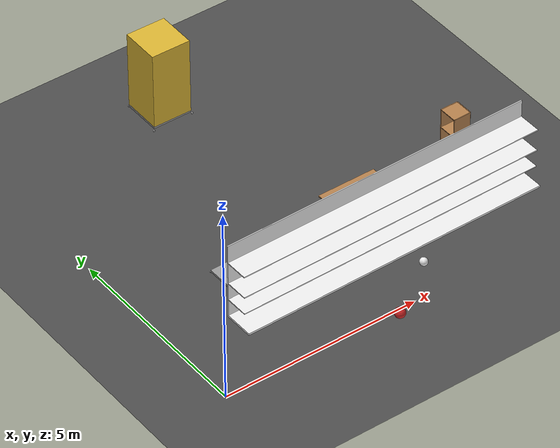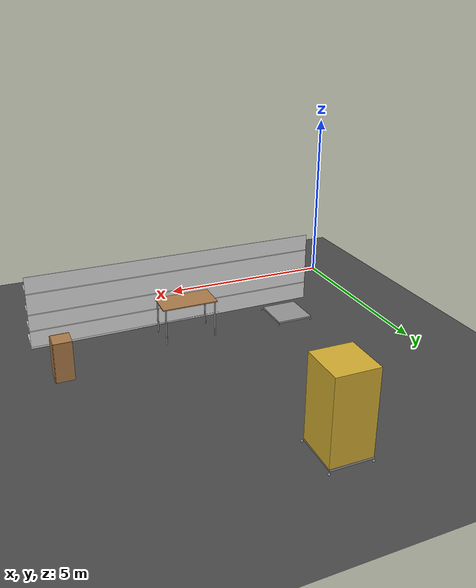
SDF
<sdf version="1.6">
 <world name="default">
  <model name="ground_plane">
   <static>1</static>
   <link name="link">
    <collision name="collision">
     <geometry><plane><normal>0 0 1</normal><size>100 100</size></plane></geometry>
     <surface>
      <contact><collide_bitmask>65535</collide_bitmask></contact>
      <friction><ode><mu>100</mu><mu2>50</mu2></ode></friction>
     </surface>
    </collision>
    <visual name="visual">
     <cast_shadows>0</cast_shadows>
     <geometry><plane><normal>0 0 1</normal><size>100 100</size></plane></geometry>
     <material>
      <script>
       <uri>model://asphalt_plane/materials/scripts</uri>
       <uri>model://asphalt_plane/materials/textures</uri>
       <name>vrc/asphalt</name>
      </script>
     </material>
    </visual>
   </link>
  </model>
  <model name="dolly">
   <link name="link_0">
    <inertial>
     <mass>0.580233</mass>
     <inertia>
      <ixx>0.0485156</ixx>
      <ixy>0</ixy>
      <ixz>0</ixz>
      <iyy>0.0485156</iyy>
      <iyz>0</iyz>
      <izz>0.0967055</izz>
     </inertia>
    </inertial>
    <pose>-0 0 0.05 0 -0 0</pose>
    <visual name="visual">
     <geometry><box><size>1 1 0.05</size></box></geometry>
     <material>
      <lighting>1</lighting>
      <script><uri>file://media/materials/scripts/gazebo.material</uri><name>Gazebo/Grey</name></script>
      <shader type="vertex"><normal_map>__default__</normal_map></shader>
      <ambient>0.3 0.3 0.3 1</ambient>
      <diffuse>0.9 0.9 0.9 1</diffuse>
      <specular>0.08 0.08 0.08 1</specular>
      <emissive>0 0 0 1</emissive>
     </material>
    </visual>
    <collision name="collision">
     <geometry><box><size>1 1 0.05</size></box></geometry>
     <surface>
      <friction>
       <ode><mu>1</mu><mu2>1</mu2><fdir1>0 0 0</fdir1><slip1>0</slip1><slip2>0</slip2></ode>
       <torsional>
        <coefficient>1</coefficient>
        <patch_radius>0</patch_radius>
        <surface_radius>0</surface_radius>
        <use_patch_radius>1</use_patch_radius>
        <ode><slip>0</slip></ode>
       </torsional>
      </friction>
      <bounce><restitution_coefficient>0</restitution_coefficient><threshold>1e+06</threshold></bounce>
      <contact>
       <collide_without_contact>0</collide_without_contact>
       <collide_without_contact_bitmask>1</collide_without_contact_bitmask>
       <collide_bitmask>1</collide_bitmask>
       <ode>
        <soft_cfm>0</soft_cfm>
        <soft_erp>0.2</soft_erp>
        <kp>1e+13</kp>
        <kd>1</kd>
        <max_vel>0.01</max_vel>
        <min_depth>0</min_depth>
       </ode>
       <bullet>
        <split_impulse>1</split_impulse>
        <split_impulse_penetration_threshold>-0.01</split_impulse_penetration_threshold>
        <soft_cfm>0</soft_cfm>
        <soft_erp>0.2</soft_erp>
        <kp>1e+13</kp>
        <kd>1</kd>
       </bullet>
      </contact>
     </surface>
    </collision>
   </link>
   <link name="link_0_0">
    <inertial>
     <mass>1</mass>
     <inertia><ixx>0.1</ixx><ixy>0</ixy><ixz>0</ixz><iyy>0.1</iyy><iyz>0</iyz><izz>0.1</izz></inertia>
    </inertial>
    <pose>-0.475902 0.525156 0 0 -0 0</pose>
    <visual name="visual">
     <geometry><sphere><radius>0.025</radius></sphere></geometry>
     <material>
      <lighting>1</lighting>
      <script><uri>file://media/materials/scripts/gazebo.material</uri><name>Gazebo/Grey</name></script>
      <shader type="vertex"><normal_map>__default__</normal_map></shader>
      <ambient>0.3 0.3 0.3 1</ambient>
      <diffuse>0.7 0.7 0.7 1</diffuse>
      <specular>0.01 0.01 0.01 1</specular>
      <emissive>0 0 0 1</emissive>
     </material>
    </visual>
    <collision name="collision">
     <geometry><sphere><radius>0.025</radius></sphere></geometry>
     <surface>
      <friction>
       <ode><mu>1</mu><mu2>1</mu2><fdir1>0 0 0</fdir1><slip1>0</slip1><slip2>0</slip2></ode>
       <torsional>
        <coefficient>1</coefficient>
        <patch_radius>0</patch_radius>
        <surface_radius>0</surface_radius>
        <use_patch_radius>1</use_patch_radius>
        <ode><slip>0</slip></ode>
       </torsional>
      </friction>
      <bounce><restitution_coefficient>0</restitution_coefficient><threshold>1e+06</threshold></bounce>
      <contact>
       <collide_without_contact>0</collide_without_contact>
       <collide_without_contact_bitmask>1</collide_without_contact_bitmask>
       <collide_bitmask>1</collide_bitmask>
       <ode>
        <soft_cfm>0</soft_cfm>
        <soft_erp>0.2</soft_erp>
        <kp>1e+13</kp>
        <kd>1</kd>
        <max_vel>0.01</max_vel>
        <min_depth>0</min_depth>
       </ode>
       <bullet>
        <split_impulse>1</split_impulse>
        <split_impulse_penetration_threshold>-0.01</split_impulse_penetration_threshold>
        <soft_cfm>0</soft_cfm>
        <soft_erp>0.2</soft_erp>
        <kp>1e+13</kp>
        <kd>1</kd>
       </bullet>
      </contact>
     </surface>
    </collision>
   </link>
   <link name="link_0_0_clone">
    <inertial>
     <mass>1</mass>
     <inertia><ixx>0.1</ixx><ixy>0</ixy><ixz>0</ixz><iyy>0.1</iyy><iyz>0</iyz><izz>0.1</izz></inertia>
    </inertial>
    <pose>0.524976 0.525931 -1.1e-05 3.7e-05 1.2e-05 0.000901</pose>
    <visual name="visual_0">
     <geometry><sphere><radius>0.025</radius></sphere></geometry>
     <material>
      <lighting>1</lighting>
      <script><uri>file://media/materials/scripts/gazebo.material</uri><name>Gazebo/Grey</name></script>
      <shader type="vertex"><normal_map>__default__</normal_map></shader>
      <ambient>0.3 0.3 0.3 1</ambient>
      <diffuse>0.7 0.7 0.7 1</diffuse>
      <specular>0.01 0.01 0.01 1</specular>
      <emissive>0 0 0 1</emissive>
     </material>
    </visual>
    <collision name="collision">
     <geometry><sphere><radius>0.025</radius></sphere></geometry>
     <surface>
      <friction>
       <ode><mu>1</mu><mu2>1</mu2><fdir1>0 0 0</fdir1><slip1>0</slip1><slip2>0</slip2></ode>
       <torsional>
        <coefficient>1</coefficient>
        <patch_radius>0</patch_radius>
        <surface_radius>0</surface_radius>
        <use_patch_radius>1</use_patch_radius>
        <ode><slip>0</slip></ode>
       </torsional>
      </friction>
      <bounce><restitution_coefficient>0</restitution_coefficient><threshold>1e+06</threshold></bounce>
      <contact>
       <collide_without_contact>0</collide_without_contact>
       <collide_without_contact_bitmask>1</collide_without_contact_bitmask>
       <collide_bitmask>1</collide_bitmask>
       <ode>
        <soft_cfm>0</soft_cfm>
        <soft_erp>0.2</soft_erp>
        <kp>1e+13</kp>
        <kd>1</kd>
        <max_vel>0.01</max_vel>
        <min_depth>0</min_depth>
       </ode>
       <bullet>
        <split_impulse>1</split_impulse>
        <split_impulse_penetration_threshold>-0.01</split_impulse_penetration_threshold>
        <soft_cfm>0</soft_cfm>
        <soft_erp>0.2</soft_erp>
        <kp>1e+13</kp>
        <kd>1</kd>
       </bullet>
      </contact>
     </surface>
    </collision>
   </link>
   <link name="link_0_0_clone_clone">
    <inertial>
     <mass>1</mass>
     <inertia><ixx>0.1</ixx><ixy>0</ixy><ixz>0</ixz><iyy>0.1</iyy><iyz>0</iyz><izz>0.1</izz></inertia>
    </inertial>
    <pose>0.525946 -0.524999 -5.1e-05 7.4e-05 2.4e-05 0.001802</pose>
    <visual name="visual_0">
     <geometry><sphere><radius>0.025</radius></sphere></geometry>
     <material>
      <lighting>1</lighting>
      <script><uri>file://media/materials/scripts/gazebo.material</uri><name>Gazebo/Grey</name></script>
      <shader type="vertex"><normal_map>__default__</normal_map></shader>
      <ambient>0.3 0.3 0.3 1</ambient>
      <diffuse>0.7 0.7 0.7 1</diffuse>
      <specular>0.01 0.01 0.01 1</specular>
      <emissive>0 0 0 1</emissive>
     </material>
    </visual>
    <collision name="collision">
     <geometry><sphere><radius>0.025</radius></sphere></geometry>
     <surface>
      <friction>
       <ode><mu>1</mu><mu2>1</mu2><fdir1>0 0 0</fdir1><slip1>0</slip1><slip2>0</slip2></ode>
       <torsional>
        <coefficient>1</coefficient>
        <patch_radius>0</patch_radius>
        <surface_radius>0</surface_radius>
        <use_patch_radius>1</use_patch_radius>
        <ode><slip>0</slip></ode>
       </torsional>
      </friction>
      <bounce><restitution_coefficient>0</restitution_coefficient><threshold>1e+06</threshold></bounce>
      <contact>
       <collide_without_contact>0</collide_without_contact>
       <collide_without_contact_bitmask>1</collide_without_contact_bitmask>
       <collide_bitmask>1</collide_bitmask>
       <ode>
        <soft_cfm>0</soft_cfm>
        <soft_erp>0.2</soft_erp>
        <kp>1e+13</kp>
        <kd>1</kd>
        <max_vel>0.01</max_vel>
        <min_depth>0</min_depth>
       </ode>
       <bullet>
        <split_impulse>1</split_impulse>
        <split_impulse_penetration_threshold>-0.01</split_impulse_penetration_threshold>
        <soft_cfm>0</soft_cfm>
        <soft_erp>0.2</soft_erp>
        <kp>1e+13</kp>
        <kd>1</kd>
       </bullet>
      </contact>
     </surface>
    </collision>
   </link>
   <link name="link_0_0_clone_clone_clone">
    <inertial>
     <mass>1</mass>
     <inertia><ixx>0.1</ixx><ixy>0</ixy><ixz>0</ixz><iyy>0.1</iyy><iyz>0</iyz><izz>0.1</izz></inertia>
    </inertial>
    <pose>-0.525024 -0.52597 -4e-05 0.000111 3.5e-05 0.002703</pose>
    <visual name="visual_0">
     <geometry><sphere><radius>0.025</radius></sphere></geometry>
     <material>
      <lighting>1</lighting>
      <script><uri>file://media/materials/scripts/gazebo.material</uri><name>Gazebo/Grey</name></script>
      <shader type="vertex"><normal_map>__default__</normal_map></shader>
      <ambient>0.3 0.3 0.3 1</ambient>
      <diffuse>0.7 0.7 0.7 1</diffuse>
      <specular>0.01 0.01 0.01 1</specular>
      <emissive>0 0 0 1</emissive>
     </material>
    </visual>
    <collision name="collision">
     <geometry><sphere><radius>0.025</radius></sphere></geometry>
     <surface>
      <friction>
       <ode><mu>1</mu><mu2>1</mu2><fdir1>0 0 0</fdir1><slip1>0</slip1><slip2>0</slip2></ode>
       <torsional>
        <coefficient>1</coefficient>
        <patch_radius>0</patch_radius>
        <surface_radius>0</surface_radius>
        <use_patch_radius>1</use_patch_radius>
        <ode><slip>0</slip></ode>
       </torsional>
      </friction>
      <bounce><restitution_coefficient>0</restitution_coefficient><threshold>1e+06</threshold></bounce>
      <contact>
       <collide_without_contact>0</collide_without_contact>
       <collide_without_contact_bitmask>1</collide_without_contact_bitmask>
       <collide_bitmask>1</collide_bitmask>
       <ode>
        <soft_cfm>0</soft_cfm>
        <soft_erp>0.2</soft_erp>
        <kp>1e+13</kp>
        <kd>1</kd>
        <max_vel>0.01</max_vel>
        <min_depth>0</min_depth>
       </ode>
       <bullet>
        <split_impulse>1</split_impulse>
        <split_impulse_penetration_threshold>-0.01</split_impulse_penetration_threshold>
        <soft_cfm>0</soft_cfm>
        <soft_erp>0.2</soft_erp>
        <kp>1e+13</kp>
        <kd>1</kd>
       </bullet>
      </contact>
     </surface>
    </collision>
   </link>
   <joint name="link_0_JOINT_1" type="ball">
    <parent>link_0</parent>
    <child>link_0_0</child>
    <physics>
     <ode><limit><cfm>0</cfm><erp>0.2</erp></limit><suspension><cfm>0</cfm><erp>0.2</erp></suspension></ode>
    </physics>
   </joint>
   <joint name="link_0_JOINT_2" type="revolute">
    <parent>link_0</parent>
    <child>link_0_0_clone</child>
    <axis>
     <xyz>1 0 0</xyz>
     <use_parent_model_frame>0</use_parent_model_frame>
     <limit>
      <lower>-1.79769e+308</lower>
      <upper>1.79769e+308</upper>
      <effort>-1</effort>
      <velocity>-1</velocity>
     </limit>
     <dynamics>
      <spring_reference>0</spring_reference>
      <spring_stiffness>0</spring_stiffness>
      <damping>0</damping>
     </dynamics>
    </axis>
    <physics>
     <ode><limit><cfm>0</cfm><erp>0.2</erp></limit><suspension><cfm>0</cfm><erp>0.2</erp></suspension></ode>
    </physics>
   </joint>
   <joint name="link_0_JOINT_3" type="revolute">
    <parent>link_0</parent>
    <child>link_0_0_clone_clone</child>
    <axis>
     <xyz>1 0 0</xyz>
     <use_parent_model_frame>0</use_parent_model_frame>
     <limit>
      <lower>-1.79769e+308</lower>
      <upper>1.79769e+308</upper>
      <effort>-1</effort>
      <velocity>-1</velocity>
     </limit>
     <dynamics>
      <spring_reference>0</spring_reference>
      <spring_stiffness>0</spring_stiffness>
      <damping>0</damping>
     </dynamics>
    </axis>
    <physics>
     <ode><limit><cfm>0</cfm><erp>0.2</erp></limit><suspension><cfm>0</cfm><erp>0.2</erp></suspension></ode>
    </physics>
   </joint>
   <joint name="link_0_JOINT_4" type="revolute">
    <parent>link_0</parent>
    <child>link_0_0_clone_clone_clone</child>
    <axis>
     <xyz>1 0 0</xyz>
     <use_parent_model_frame>0</use_parent_model_frame>
     <limit>
      <lower>-1.79769e+308</lower>
      <upper>1.79769e+308</upper>
      <effort>-1</effort>
      <velocity>-1</velocity>
     </limit>
     <dynamics>
      <spring_reference>0</spring_reference>
      <spring_stiffness>0</spring_stiffness>
      <damping>0</damping>
     </dynamics>
    </axis>
    <physics>
     <ode><limit><cfm>0</cfm><erp>0.2</erp></limit><suspension><cfm>0</cfm><erp>0.2</erp></suspension></ode>
    </physics>
   </joint>
   <static>0</static>
   <pose>2.48886 2.79179 0.075025 -3.8e-05 -1.1e-05 0.005109</pose>
  </model>
  <model name="dolly_0">
   <link name="link_0">
    <inertial>
     <mass>0.580233</mass>
     <inertia>
      <ixx>0.0485156</ixx>
      <ixy>0</ixy>
      <ixz>0</ixz>
      <iyy>0.0485156</iyy>
      <iyz>0</iyz>
      <izz>0.0967055</izz>
     </inertia>
    </inertial>
    <pose>-0 0 0.05 0 -0 0</pose>
    <visual name="visual">
     <geometry><box><size>1 1 0.05</size></box></geometry>
     <material>
      <lighting>1</lighting>
      <script><uri>file://media/materials/scripts/gazebo.material</uri><name>Gazebo/Grey</name></script>
      <shader type="vertex"><normal_map>__default__</normal_map></shader>
      <ambient>0.3 0.3 0.3 1</ambient>
      <diffuse>0.9 0.9 0.9 1</diffuse>
      <specular>0.08 0.08 0.08 1</specular>
      <emissive>0 0 0 1</emissive>
     </material>
    </visual>
    <collision name="collision">
     <geometry><box><size>1 1 0.05</size></box></geometry>
     <surface>
      <friction>
       <ode><mu>1</mu><mu2>1</mu2><fdir1>0 0 0</fdir1><slip1>0</slip1><slip2>0</slip2></ode>
       <torsional>
        <coefficient>1</coefficient>
        <patch_radius>0</patch_radius>
        <surface_radius>0</surface_radius>
        <use_patch_radius>1</use_patch_radius>
        <ode><slip>0</slip></ode>
       </torsional>
      </friction>
      <bounce><restitution_coefficient>0</restitution_coefficient><threshold>1e+06</threshold></bounce>
      <contact>
       <collide_without_contact>0</collide_without_contact>
       <collide_without_contact_bitmask>1</collide_without_contact_bitmask>
       <collide_bitmask>1</collide_bitmask>
       <ode>
        <soft_cfm>0</soft_cfm>
        <soft_erp>0.2</soft_erp>
        <kp>1e+13</kp>
        <kd>1</kd>
        <max_vel>0.01</max_vel>
        <min_depth>0</min_depth>
       </ode>
       <bullet>
        <split_impulse>1</split_impulse>
        <split_impulse_penetration_threshold>-0.01</split_impulse_penetration_threshold>
        <soft_cfm>0</soft_cfm>
        <soft_erp>0.2</soft_erp>
        <kp>1e+13</kp>
        <kd>1</kd>
       </bullet>
      </contact>
     </surface>
    </collision>
   </link>
   <link name="link_0_0">
    <inertial>
     <mass>1</mass>
     <inertia><ixx>0.1</ixx><ixy>0</ixy><ixz>0</ixz><iyy>0.1</iyy><iyz>0</iyz><izz>0.1</izz></inertia>
    </inertial>
    <pose>-0.475902 0.525156 0 0 -0 0</pose>
    <visual name="visual">
     <geometry><sphere><radius>0.025</radius></sphere></geometry>
     <material>
      <lighting>1</lighting>
      <script><uri>file://media/materials/scripts/gazebo.material</uri><name>Gazebo/Grey</name></script>
      <shader type="vertex"><normal_map>__default__</normal_map></shader>
      <ambient>0.3 0.3 0.3 1</ambient>
      <diffuse>0.7 0.7 0.7 1</diffuse>
      <specular>0.01 0.01 0.01 1</specular>
      <emissive>0 0 0 1</emissive>
     </material>
    </visual>
    <collision name="collision">
     <geometry><sphere><radius>0.025</radius></sphere></geometry>
     <surface>
      <friction>
       <ode><mu>1</mu><mu2>1</mu2><fdir1>0 0 0</fdir1><slip1>0</slip1><slip2>0</slip2></ode>
       <torsional>
        <coefficient>1</coefficient>
        <patch_radius>0</patch_radius>
        <surface_radius>0</surface_radius>
        <use_patch_radius>1</use_patch_radius>
        <ode><slip>0</slip></ode>
       </torsional>
      </friction>
      <bounce><restitution_coefficient>0</restitution_coefficient><threshold>1e+06</threshold></bounce>
      <contact>
       <collide_without_contact>0</collide_without_contact>
       <collide_without_contact_bitmask>1</collide_without_contact_bitmask>
       <collide_bitmask>1</collide_bitmask>
       <ode>
        <soft_cfm>0</soft_cfm>
        <soft_erp>0.2</soft_erp>
        <kp>1e+13</kp>
        <kd>1</kd>
        <max_vel>0.01</max_vel>
        <min_depth>0</min_depth>
       </ode>
       <bullet>
        <split_impulse>1</split_impulse>
        <split_impulse_penetration_threshold>-0.01</split_impulse_penetration_threshold>
        <soft_cfm>0</soft_cfm>
        <soft_erp>0.2</soft_erp>
        <kp>1e+13</kp>
        <kd>1</kd>
       </bullet>
      </contact>
     </surface>
    </collision>
   </link>
   <link name="link_0_0_clone">
    <inertial>
     <mass>1</mass>
     <inertia><ixx>0.1</ixx><ixy>0</ixy><ixz>0</ixz><iyy>0.1</iyy><iyz>0</iyz><izz>0.1</izz></inertia>
    </inertial>
    <pose>0.524976 0.525931 -1.1e-05 3.7e-05 1.2e-05 0.000901</pose>
    <visual name="visual_0">
     <geometry><sphere><radius>0.025</radius></sphere></geometry>
     <material>
      <lighting>1</lighting>
      <script><uri>file://media/materials/scripts/gazebo.material</uri><name>Gazebo/Grey</name></script>
      <shader type="vertex"><normal_map>__default__</normal_map></shader>
      <ambient>0.3 0.3 0.3 1</ambient>
      <diffuse>0.7 0.7 0.7 1</diffuse>
      <specular>0.01 0.01 0.01 1</specular>
      <emissive>0 0 0 1</emissive>
     </material>
    </visual>
    <collision name="collision">
     <geometry><sphere><radius>0.025</radius></sphere></geometry>
     <surface>
      <friction>
       <ode><mu>1</mu><mu2>1</mu2><fdir1>0 0 0</fdir1><slip1>0</slip1><slip2>0</slip2></ode>
       <torsional>
        <coefficient>1</coefficient>
        <patch_radius>0</patch_radius>
        <surface_radius>0</surface_radius>
        <use_patch_radius>1</use_patch_radius>
        <ode><slip>0</slip></ode>
       </torsional>
      </friction>
      <bounce><restitution_coefficient>0</restitution_coefficient><threshold>1e+06</threshold></bounce>
      <contact>
       <collide_without_contact>0</collide_without_contact>
       <collide_without_contact_bitmask>1</collide_without_contact_bitmask>
       <collide_bitmask>1</collide_bitmask>
       <ode>
        <soft_cfm>0</soft_cfm>
        <soft_erp>0.2</soft_erp>
        <kp>1e+13</kp>
        <kd>1</kd>
        <max_vel>0.01</max_vel>
        <min_depth>0</min_depth>
       </ode>
       <bullet>
        <split_impulse>1</split_impulse>
        <split_impulse_penetration_threshold>-0.01</split_impulse_penetration_threshold>
        <soft_cfm>0</soft_cfm>
        <soft_erp>0.2</soft_erp>
        <kp>1e+13</kp>
        <kd>1</kd>
       </bullet>
      </contact>
     </surface>
    </collision>
   </link>
   <link name="link_0_0_clone_clone">
    <inertial>
     <mass>1</mass>
     <inertia><ixx>0.1</ixx><ixy>0</ixy><ixz>0</ixz><iyy>0.1</iyy><iyz>0</iyz><izz>0.1</izz></inertia>
    </inertial>
    <pose>0.525946 -0.524999 -5.1e-05 7.4e-05 2.4e-05 0.001802</pose>
    <visual name="visual_0">
     <geometry><sphere><radius>0.025</radius></sphere></geometry>
     <material>
      <lighting>1</lighting>
      <script><uri>file://media/materials/scripts/gazebo.material</uri><name>Gazebo/Grey</name></script>
      <shader type="vertex"><normal_map>__default__</normal_map></shader>
      <ambient>0.3 0.3 0.3 1</ambient>
      <diffuse>0.7 0.7 0.7 1</diffuse>
      <specular>0.01 0.01 0.01 1</specular>
      <emissive>0 0 0 1</emissive>
     </material>
    </visual>
    <collision name="collision">
     <geometry><sphere><radius>0.025</radius></sphere></geometry>
     <surface>
      <friction>
       <ode><mu>1</mu><mu2>1</mu2><fdir1>0 0 0</fdir1><slip1>0</slip1><slip2>0</slip2></ode>
       <torsional>
        <coefficient>1</coefficient>
        <patch_radius>0</patch_radius>
        <surface_radius>0</surface_radius>
        <use_patch_radius>1</use_patch_radius>
        <ode><slip>0</slip></ode>
       </torsional>
      </friction>
      <bounce><restitution_coefficient>0</restitution_coefficient><threshold>1e+06</threshold></bounce>
      <contact>
       <collide_without_contact>0</collide_without_contact>
       <collide_without_contact_bitmask>1</collide_without_contact_bitmask>
       <collide_bitmask>1</collide_bitmask>
       <ode>
        <soft_cfm>0</soft_cfm>
        <soft_erp>0.2</soft_erp>
        <kp>1e+13</kp>
        <kd>1</kd>
        <max_vel>0.01</max_vel>
        <min_depth>0</min_depth>
       </ode>
       <bullet>
        <split_impulse>1</split_impulse>
        <split_impulse_penetration_threshold>-0.01</split_impulse_penetration_threshold>
        <soft_cfm>0</soft_cfm>
        <soft_erp>0.2</soft_erp>
        <kp>1e+13</kp>
        <kd>1</kd>
       </bullet>
      </contact>
     </surface>
    </collision>
   </link>
   <link name="link_0_0_clone_clone_clone">
    <inertial>
     <mass>1</mass>
     <inertia><ixx>0.1</ixx><ixy>0</ixy><ixz>0</ixz><iyy>0.1</iyy><iyz>0</iyz><izz>0.1</izz></inertia>
    </inertial>
    <pose>-0.525024 -0.52597 -4e-05 0.000111 3.5e-05 0.002703</pose>
    <visual name="visual_0">
     <geometry><sphere><radius>0.025</radius></sphere></geometry>
     <material>
      <lighting>1</lighting>
      <script><uri>file://media/materials/scripts/gazebo.material</uri><name>Gazebo/Grey</name></script>
      <shader type="vertex"><normal_map>__default__</normal_map></shader>
      <ambient>0.3 0.3 0.3 1</ambient>
      <diffuse>0.7 0.7 0.7 1</diffuse>
      <specular>0.01 0.01 0.01 1</specular>
      <emissive>0 0 0 1</emissive>
     </material>
    </visual>
    <collision name="collision">
     <geometry><sphere><radius>0.025</radius></sphere></geometry>
     <surface>
      <friction>
       <ode><mu>1</mu><mu2>1</mu2><fdir1>0 0 0</fdir1><slip1>0</slip1><slip2>0</slip2></ode>
       <torsional>
        <coefficient>1</coefficient>
        <patch_radius>0</patch_radius>
        <surface_radius>0</surface_radius>
        <use_patch_radius>1</use_patch_radius>
        <ode><slip>0</slip></ode>
       </torsional>
      </friction>
      <bounce><restitution_coefficient>0</restitution_coefficient><threshold>1e+06</threshold></bounce>
      <contact>
       <collide_without_contact>0</collide_without_contact>
       <collide_without_contact_bitmask>1</collide_without_contact_bitmask>
       <collide_bitmask>1</collide_bitmask>
       <ode>
        <soft_cfm>0</soft_cfm>
        <soft_erp>0.2</soft_erp>
        <kp>1e+13</kp>
        <kd>1</kd>
        <max_vel>0.01</max_vel>
        <min_depth>0</min_depth>
       </ode>
       <bullet>
        <split_impulse>1</split_impulse>
        <split_impulse_penetration_threshold>-0.01</split_impulse_penetration_threshold>
        <soft_cfm>0</soft_cfm>
        <soft_erp>0.2</soft_erp>
        <kp>1e+13</kp>
        <kd>1</kd>
       </bullet>
      </contact>
     </surface>
    </collision>
   </link>
   <joint name="link_0_JOINT_1" type="ball">
    <parent>link_0</parent>
    <child>link_0_0</child>
    <physics>
     <ode><limit><cfm>0</cfm><erp>0.2</erp></limit><suspension><cfm>0</cfm><erp>0.2</erp></suspension></ode>
    </physics>
   </joint>
   <joint name="link_0_JOINT_2" type="revolute">
    <parent>link_0</parent>
    <child>link_0_0_clone</child>
    <axis>
     <xyz>1 0 0</xyz>
     <use_parent_model_frame>0</use_parent_model_frame>
     <limit>
      <lower>-1.79769e+308</lower>
      <upper>1.79769e+308</upper>
      <effort>-1</effort>
      <velocity>-1</velocity>
     </limit>
     <dynamics>
      <spring_reference>0</spring_reference>
      <spring_stiffness>0</spring_stiffness>
      <damping>0</damping>
     </dynamics>
    </axis>
    <physics>
     <ode><limit><cfm>0</cfm><erp>0.2</erp></limit><suspension><cfm>0</cfm><erp>0.2</erp></suspension></ode>
    </physics>
   </joint>
   <joint name="link_0_JOINT_3" type="revolute">
    <parent>link_0</parent>
    <child>link_0_0_clone_clone</child>
    <axis>
     <xyz>1 0 0</xyz>
     <use_parent_model_frame>0</use_parent_model_frame>
     <limit>
      <lower>-1.79769e+308</lower>
      <upper>1.79769e+308</upper>
      <effort>-1</effort>
      <velocity>-1</velocity>
     </limit>
     <dynamics>
      <spring_reference>0</spring_reference>
      <spring_stiffness>0</spring_stiffness>
      <damping>0</damping>
     </dynamics>
    </axis>
    <physics>
     <ode><limit><cfm>0</cfm><erp>0.2</erp></limit><suspension><cfm>0</cfm><erp>0.2</erp></suspension></ode>
    </physics>
   </joint>
   <joint name="link_0_JOINT_4" type="revolute">
    <parent>link_0</parent>
    <child>link_0_0_clone_clone_clone</child>
    <axis>
     <xyz>1 0 0</xyz>
     <use_parent_model_frame>0</use_parent_model_frame>
     <limit>
      <lower>-1.79769e+308</lower>
      <upper>1.79769e+308</upper>
      <effort>-1</effort>
      <velocity>-1</velocity>
     </limit>
     <dynamics>
      <spring_reference>0</spring_reference>
      <spring_stiffness>0</spring_stiffness>
      <damping>0</damping>
     </dynamics>
    </axis>
    <physics>
     <ode><limit><cfm>0</cfm><erp>0.2</erp></limit><suspension><cfm>0</cfm><erp>0.2</erp></suspension></ode>
    </physics>
   </joint>
   <static>0</static>
   <pose>4.28746 8.44825 0.075018 -4.6e-05 -5e-06 -0.001109</pose>
  </model>
  <model name="cabinet">
   <static>1</static>
   <link name="cabinet_bottom_plate">
    <inertial>
     <pose>0 0 -1 0 -0 0</pose>
     <inertia><ixx>2.05</ixx><ixy>0</ixy><ixz>0</ixz><iyy>2.05</iyy><iyz>0</iyz><izz>2.05</izz></inertia>
     <mass>25</mass>
    </inertial>
    <collision name="cabinet_bottom_plate_geom">
     <pose>0 0 0.01 0 -0 0</pose>
     <geometry><box><size>0.45 0.45 0.02</size></box></geometry>
    </collision>
    <visual name="cabinet_bottom_plate_geom_visual">
     <pose>0 0 0.01 0 -0 0</pose>
     <geometry><box><size>0.45 0.45 0.02</size></box></geometry>
     <material>
      <script><uri>file://media/materials/scripts/gazebo.material</uri><name>Gazebo/Wood</name></script>
     </material>
    </visual>
    <collision name="cabinet_bottom_plate_geom_cabinet_back_plate">
     <pose>0.235 0 0.51 0 -0 0</pose>
     <geometry><box><size>0.02 0.45 1.02</size></box></geometry>
    </collision>
    <visual name="cabinet_bottom_plate_geom_cabinet_back_plate_visual">
     <pose>0.235 0 0.51 0 -0 0</pose>
     <geometry><box><size>0.02 0.45 1.02</size></box></geometry>
     <material>
      <script><uri>file://media/materials/scripts/gazebo.material</uri><name>Gazebo/Wood</name></script>
     </material>
    </visual>
    <collision name="cabinet_bottom_plate_geom_cabinet_left_plate">
     <pose>0 0.235 0.51 0 -0 0</pose>
     <geometry><box><size>0.45 0.02 1.02</size></box></geometry>
    </collision>
    <visual name="cabinet_bottom_plate_geom_cabinet_left_plate_visual">
     <pose>0 0.235 0.51 0 -0 0</pose>
     <geometry><box><size>0.45 0.02 1.02</size></box></geometry>
     <material>
      <script><uri>file://media/materials/scripts/gazebo.material</uri><name>Gazebo/Wood</name></script>
     </material>
    </visual>
    <collision name="cabinet_bottom_plate_geom_cabinet_middle_plate">
     <pose>0 0 0.51 0 -0 0</pose>
     <geometry><box><size>0.45 0.45 0.02</size></box></geometry>
    </collision>
    <visual name="cabinet_bottom_plate_geom_cabinet_middle_plate_visual">
     <pose>0 0 0.51 0 -0 0</pose>
     <geometry><box><size>0.45 0.45 0.02</size></box></geometry>
     <material>
      <script><uri>file://media/materials/scripts/gazebo.material</uri><name>Gazebo/Wood</name></script>
     </material>
    </visual>
    <collision name="cabinet_bottom_plate_geom_cabinet_right_plate">
     <pose>0 -0.235 0.51 0 -0 0</pose>
     <geometry><box><size>0.45 0.02 1.02</size></box></geometry>
    </collision>
    <visual name="cabinet_bottom_plate_geom_cabinet_right_plate_visual">
     <pose>0 -0.235 0.51 0 -0 0</pose>
     <geometry><box><size>0.45 0.02 1.02</size></box></geometry>
     <material>
      <script><uri>file://media/materials/scripts/gazebo.material</uri><name>Gazebo/Wood</name></script>
     </material>
    </visual>
    <collision name="cabinet_bottom_plate_geom_cabinet_top_plate">
     <pose>0 0 1.01 0 -0 0</pose>
     <geometry><box><size>0.45 0.45 0.02</size></box></geometry>
    </collision>
    <visual name="cabinet_bottom_plate_geom_cabinet_top_plate_visual">
     <pose>0 0 1.01 0 -0 0</pose>
     <geometry><box><size>0.45 0.45 0.02</size></box></geometry>
     <material>
      <script><uri>file://media/materials/scripts/gazebo.material</uri><name>Gazebo/Wood</name></script>
     </material>
    </visual>
   </link>
   <pose>8.87311 3.55227 0 0 -0 0</pose>
  </model>
  <model name="LongShelfx4_clone">
   <link name="link_0">
    <inertial>
     <mass>0.38468</mass>
     <inertia>
      <ixx>0.0321196</ixx>
      <ixy>0</ixy>
      <ixz>0</ixz>
      <iyy>2.41752</iyy>
      <iyz>0</iyz>
      <izz>2.44951</izz>
     </inertia>
    </inertial>
    <pose>-4.95428 0.681381 -0.638013 0 -0 0</pose>
    <visual name="visual">
     <geometry><box><size>8 0.75 0.05</size></box></geometry>
     <material>
      <lighting>1</lighting>
      <script><uri>file://media/materials/scripts/gazebo.material</uri><name>Gazebo/White</name></script>
      <shader type="vertex"><normal_map>__default__</normal_map></shader>
      <ambient>0.3 0.3 0.3 1</ambient>
      <diffuse>0.7 0.7 0.7 1</diffuse>
      <specular>0.01 0.01 0.01 1</specular>
      <emissive>0 0 0 1</emissive>
     </material>
    </visual>
    <collision name="collision">
     <geometry><box><size>8 0.75 0.05</size></box></geometry>
     <surface>
      <friction>
       <ode><mu>1</mu><mu2>1</mu2><fdir1>0 0 0</fdir1><slip1>0</slip1><slip2>0</slip2></ode>
       <torsional>
        <coefficient>1</coefficient>
        <patch_radius>0</patch_radius>
        <surface_radius>0</surface_radius>
        <use_patch_radius>1</use_patch_radius>
        <ode><slip>0</slip></ode>
       </torsional>
      </friction>
      <bounce><restitution_coefficient>0</restitution_coefficient><threshold>1e+06</threshold></bounce>
      <contact>
       <collide_without_contact>0</collide_without_contact>
       <collide_without_contact_bitmask>1</collide_without_contact_bitmask>
       <collide_bitmask>1</collide_bitmask>
       <ode>
        <soft_cfm>0</soft_cfm>
        <soft_erp>0.2</soft_erp>
        <kp>1e+13</kp>
        <kd>1</kd>
        <max_vel>0.01</max_vel>
        <min_depth>0</min_depth>
       </ode>
       <bullet>
        <split_impulse>1</split_impulse>
        <split_impulse_penetration_threshold>-0.01</split_impulse_penetration_threshold>
        <soft_cfm>0</soft_cfm>
        <soft_erp>0.2</soft_erp>
        <kp>1e+13</kp>
        <kd>1</kd>
       </bullet>
      </contact>
     </surface>
    </collision>
   </link>
   <link name="link_1">
    <inertial>
     <mass>0.748605</mass>
     <inertia><ixx>0.445095</ixx><ixy>0</ixy><ixz>0</ixz><iyy>5.12268</iyy><iyz>0</iyz><izz>4.67771</izz></inertia>
    </inertial>
    <pose>-4.95468 0.318881 0.335328 0 -0 0</pose>
    <visual name="visual">
     <geometry><box><size>8 0.025 2</size></box></geometry>
     <material>
      <lighting>1</lighting>
      <script><uri>file://media/materials/scripts/gazebo.material</uri><name>Gazebo/White</name></script>
      <shader type="vertex"><normal_map>__default__</normal_map></shader>
      <ambient>0.3 0.3 0.3 1</ambient>
      <diffuse>0.7 0.7 0.7 1</diffuse>
      <specular>0.01 0.01 0.01 1</specular>
      <emissive>0 0 0 1</emissive>
     </material>
    </visual>
    <collision name="collision">
     <geometry><box><size>8 0.025 2</size></box></geometry>
     <surface>
      <friction>
       <ode><mu>1</mu><mu2>1</mu2><fdir1>0 0 0</fdir1><slip1>0</slip1><slip2>0</slip2></ode>
       <torsional>
        <coefficient>1</coefficient>
        <patch_radius>0</patch_radius>
        <surface_radius>0</surface_radius>
        <use_patch_radius>1</use_patch_radius>
        <ode><slip>0</slip></ode>
       </torsional>
      </friction>
      <bounce><restitution_coefficient>0</restitution_coefficient><threshold>1e+06</threshold></bounce>
      <contact>
       <collide_without_contact>0</collide_without_contact>
       <collide_without_contact_bitmask>1</collide_without_contact_bitmask>
       <collide_bitmask>1</collide_bitmask>
       <ode>
        <soft_cfm>0</soft_cfm>
        <soft_erp>0.2</soft_erp>
        <kp>1e+13</kp>
        <kd>1</kd>
        <max_vel>0.01</max_vel>
        <min_depth>0</min_depth>
       </ode>
       <bullet>
        <split_impulse>1</split_impulse>
        <split_impulse_penetration_threshold>-0.01</split_impulse_penetration_threshold>
        <soft_cfm>0</soft_cfm>
        <soft_erp>0.2</soft_erp>
        <kp>1e+13</kp>
        <kd>1</kd>
       </bullet>
      </contact>
     </surface>
    </collision>
   </link>
   <link name="link_2">
    <inertial>
     <mass>0.0597214</mass>
     <inertia>
      <ixx>0.00742007</ixx>
      <ixy>0</ixy>
      <ixz>0</ixz>
      <iyy>0.00498871</iyy>
      <iyz>0</iyz>
      <izz>0.0123849</izz>
     </inertia>
    </inertial>
    <pose>-4.95438 0.606368 0.295639 0 -0 0</pose>
    <visual name="visual">
     <geometry><box><size>8 0.6 0.025</size></box></geometry>
     <material>
      <lighting>1</lighting>
      <script><uri>file://media/materials/scripts/gazebo.material</uri><name>Gazebo/White</name></script>
      <shader type="vertex"><normal_map>__default__</normal_map></shader>
      <ambient>0.3 0.3 0.3 1</ambient>
      <diffuse>0.7 0.7 0.7 1</diffuse>
      <specular>0.01 0.01 0.01 1</specular>
      <emissive>0 0 0 1</emissive>
     </material>
    </visual>
    <collision name="collision">
     <geometry><box><size>8 0.600001 0.025</size></box></geometry>
     <surface>
      <friction>
       <ode><mu>1</mu><mu2>1</mu2><fdir1>0 0 0</fdir1><slip1>0</slip1><slip2>0</slip2></ode>
       <torsional>
        <coefficient>1</coefficient>
        <patch_radius>0</patch_radius>
        <surface_radius>0</surface_radius>
        <use_patch_radius>1</use_patch_radius>
        <ode><slip>0</slip></ode>
       </torsional>
      </friction>
      <bounce><restitution_coefficient>0</restitution_coefficient><threshold>1e+06</threshold></bounce>
      <contact>
       <collide_without_contact>0</collide_without_contact>
       <collide_without_contact_bitmask>1</collide_without_contact_bitmask>
       <collide_bitmask>1</collide_bitmask>
       <ode>
        <soft_cfm>0</soft_cfm>
        <soft_erp>0.2</soft_erp>
        <kp>1e+13</kp>
        <kd>1</kd>
        <max_vel>0.01</max_vel>
        <min_depth>0</min_depth>
       </ode>
       <bullet>
        <split_impulse>1</split_impulse>
        <split_impulse_penetration_threshold>-0.01</split_impulse_penetration_threshold>
        <soft_cfm>0</soft_cfm>
        <soft_erp>0.2</soft_erp>
        <kp>1e+13</kp>
        <kd>1</kd>
       </bullet>
      </contact>
     </surface>
    </collision>
   </link>
   <link name="link_2_clone">
    <inertial>
     <mass>0.0597214</mass>
     <inertia>
      <ixx>0.00742007</ixx>
      <ixy>0</ixy>
      <ixz>0</ixz>
      <iyy>0.00498871</iyy>
      <iyz>0</iyz>
      <izz>0.0123849</izz>
     </inertia>
    </inertial>
    <pose>-4.95438 0.606361 0.871858 0 -0 0</pose>
    <visual name="visual">
     <geometry><box><size>8 0.6 0.025</size></box></geometry>
     <material>
      <lighting>1</lighting>
      <script><uri>file://media/materials/scripts/gazebo.material</uri><name>Gazebo/White</name></script>
      <shader type="vertex"><normal_map>__default__</normal_map></shader>
      <ambient>0.3 0.3 0.3 1</ambient>
      <diffuse>0.7 0.7 0.7 1</diffuse>
      <specular>0.01 0.01 0.01 1</specular>
      <emissive>0 0 0 1</emissive>
     </material>
    </visual>
    <collision name="collision">
     <geometry><box><size>8 0.600001 0.025</size></box></geometry>
     <surface>
      <friction>
       <ode><mu>1</mu><mu2>1</mu2><fdir1>0 0 0</fdir1><slip1>0</slip1><slip2>0</slip2></ode>
       <torsional>
        <coefficient>1</coefficient>
        <patch_radius>0</patch_radius>
        <surface_radius>0</surface_radius>
        <use_patch_radius>1</use_patch_radius>
        <ode><slip>0</slip></ode>
       </torsional>
      </friction>
      <bounce><restitution_coefficient>0</restitution_coefficient><threshold>1e+06</threshold></bounce>
      <contact>
       <collide_without_contact>0</collide_without_contact>
       <collide_without_contact_bitmask>1</collide_without_contact_bitmask>
       <collide_bitmask>1</collide_bitmask>
       <ode>
        <soft_cfm>0</soft_cfm>
        <soft_erp>0.2</soft_erp>
        <kp>1e+13</kp>
        <kd>1</kd>
        <max_vel>0.01</max_vel>
        <min_depth>0</min_depth>
       </ode>
       <bullet>
        <split_impulse>1</split_impulse>
        <split_impulse_penetration_threshold>-0.01</split_impulse_penetration_threshold>
        <soft_cfm>0</soft_cfm>
        <soft_erp>0.2</soft_erp>
        <kp>1e+13</kp>
        <kd>1</kd>
       </bullet>
      </contact>
     </surface>
    </collision>
   </link>
   <link name="link_2_clone_0">
    <inertial>
     <mass>0.0597214</mass>
     <inertia>
      <ixx>0.00742007</ixx>
      <ixy>0</ixy>
      <ixz>0</ixz>
      <iyy>0.00498871</iyy>
      <iyz>0</iyz>
      <izz>0.0123849</izz>
     </inertia>
    </inertial>
    <pose>-4.95438 0.606375 -0.163574 0 -0 0</pose>
    <visual name="visual">
     <geometry><box><size>8 0.6 0.025</size></box></geometry>
     <material>
      <lighting>1</lighting>
      <script><uri>file://media/materials/scripts/gazebo.material</uri><name>Gazebo/White</name></script>
      <shader type="vertex"><normal_map>__default__</normal_map></shader>
      <ambient>0.3 0.3 0.3 1</ambient>
      <diffuse>0.7 0.7 0.7 1</diffuse>
      <specular>0.01 0.01 0.01 1</specular>
      <emissive>0 0 0 1</emissive>
     </material>
    </visual>
    <collision name="collision">
     <geometry><box><size>8 0.600001 0.025</size></box></geometry>
     <surface>
      <friction>
       <ode><mu>1</mu><mu2>1</mu2><fdir1>0 0 0</fdir1><slip1>0</slip1><slip2>0</slip2></ode>
       <torsional>
        <coefficient>1</coefficient>
        <patch_radius>0</patch_radius>
        <surface_radius>0</surface_radius>
        <use_patch_radius>1</use_patch_radius>
        <ode><slip>0</slip></ode>
       </torsional>
      </friction>
      <bounce><restitution_coefficient>0</restitution_coefficient><threshold>1e+06</threshold></bounce>
      <contact>
       <collide_without_contact>0</collide_without_contact>
       <collide_without_contact_bitmask>1</collide_without_contact_bitmask>
       <collide_bitmask>1</collide_bitmask>
       <ode>
        <soft_cfm>0</soft_cfm>
        <soft_erp>0.2</soft_erp>
        <kp>1e+13</kp>
        <kd>1</kd>
        <max_vel>0.01</max_vel>
        <min_depth>0</min_depth>
       </ode>
       <bullet>
        <split_impulse>1</split_impulse>
        <split_impulse_penetration_threshold>-0.01</split_impulse_penetration_threshold>
        <soft_cfm>0</soft_cfm>
        <soft_erp>0.2</soft_erp>
        <kp>1e+13</kp>
        <kd>1</kd>
       </bullet>
      </contact>
     </surface>
    </collision>
   </link>
   <joint name="link_1_JOINT_4" type="fixed">
    <parent>link_1</parent>
    <child>link_0</child>
    <physics>
     <ode><limit><cfm>0</cfm><erp>0.2</erp></limit><suspension><cfm>0</cfm><erp>0.2</erp></suspension></ode>
    </physics>
   </joint>
   <joint name="link_1_JOINT_5" type="fixed">
    <parent>link_1</parent>
    <child>link_2_clone_0</child>
    <physics>
     <ode><limit><cfm>0</cfm><erp>0.2</erp></limit><suspension><cfm>0</cfm><erp>0.2</erp></suspension></ode>
    </physics>
   </joint>
   <joint name="link_1_JOINT_6" type="fixed">
    <parent>link_1</parent>
    <child>link_2</child>
    <physics>
     <ode><limit><cfm>0</cfm><erp>0.2</erp></limit><suspension><cfm>0</cfm><erp>0.2</erp></suspension></ode>
    </physics>
   </joint>
   <joint name="link_1_JOINT_7" type="fixed">
    <parent>link_1</parent>
    <child>link_2_clone</child>
    <physics>
     <ode><limit><cfm>0</cfm><erp>0.2</erp></limit><suspension><cfm>0</cfm><erp>0.2</erp></suspension></ode>
    </physics>
   </joint>
   <static>0</static>
   <pose>0.51368 2.24347 0.715429 -0.002288 0 -3.131</pose>
  </model>
  <model name="table_clone_0">
   <static>1</static>
   <link name="link">
    <collision name="surface">
     <pose>0 0 1 0 -0 0</pose>
     <geometry><box><size>1.5 0.8 0.03</size></box></geometry>
     <surface><friction><ode><mu>0.6</mu><mu2>0.6</mu2></ode></friction></surface>
    </collision>
    <visual name="visual1">
     <pose>0 0 1 0 -0 0</pose>
     <geometry><box><size>1.5 0.8 0.03</size></box></geometry>
     <material>
      <script><uri>file://media/materials/scripts/gazebo.material</uri><name>Gazebo/Wood</name></script>
     </material>
    </visual>
    <collision name="front_left_leg">
     <pose>0.68 0.38 0.5 0 -0 0</pose>
     <geometry><cylinder><radius>0.02</radius><length>1</length></cylinder></geometry>
    </collision>
    <visual name="front_left_leg">
     <pose>0.68 0.38 0.5 0 -0 0</pose>
     <geometry><cylinder><radius>0.02</radius><length>1</length></cylinder></geometry>
     <material>
      <script><uri>file://media/materials/scripts/gazebo.material</uri><name>Gazebo/Grey</name></script>
     </material>
    </visual>
    <collision name="front_right_leg">
     <pose>0.68 -0.38 0.5 0 -0 0</pose>
     <geometry><cylinder><radius>0.02</radius><length>1</length></cylinder></geometry>
    </collision>
    <visual name="front_right_leg">
     <pose>0.68 -0.38 0.5 0 -0 0</pose>
     <geometry><cylinder><radius>0.02</radius><length>1</length></cylinder></geometry>
     <material>
      <script><uri>file://media/materials/scripts/gazebo.material</uri><name>Gazebo/Grey</name></script>
     </material>
    </visual>
    <collision name="back_right_leg">
     <pose>-0.68 -0.38 0.5 0 -0 0</pose>
     <geometry><cylinder><radius>0.02</radius><length>1</length></cylinder></geometry>
    </collision>
    <visual name="back_right_leg">
     <pose>-0.68 -0.38 0.5 0 -0 0</pose>
     <geometry><cylinder><radius>0.02</radius><length>1</length></cylinder></geometry>
     <material>
      <script><uri>file://media/materials/scripts/gazebo.material</uri><name>Gazebo/Grey</name></script>
     </material>
    </visual>
    <collision name="back_left_leg">
     <pose>-0.68 0.38 0.5 0 -0 0</pose>
     <geometry><cylinder><radius>0.02</radius><length>1</length></cylinder></geometry>
    </collision>
    <visual name="back_left_leg">
     <pose>-0.68 0.38 0.5 0 -0 0</pose>
     <geometry><cylinder><radius>0.02</radius><length>1</length></cylinder></geometry>
     <material>
      <script><uri>file://media/materials/scripts/gazebo.material</uri><name>Gazebo/Grey</name></script>
     </material>
    </visual>
   </link>
   <pose>5.46734 2.66741 0 0 -0 0</pose>
  </model>
  <model name="cube_1x1x2">
   <link name="link">
    <pose>0 0 0.05 0 -0 0</pose>
    <inertial>
     <mass>0.5167</mass>
     <inertia>
      <ixx>0.00086117</ixx>
      <ixy>0</ixy>
      <ixz>0</ixz>
      <iyy>0.00086117</iyy>
      <iyz>0</iyz>
      <izz>0.00086117</izz>
     </inertia>
    </inertial>
    <visual name="visual">
     <geometry><box><size>1 1 2</size></box></geometry>
     <material>
      <script><uri>file://media/materials/scripts/gazebo.material</uri><name>Gazebo/Gold</name></script>
      <shader type="vertex"><normal_map>__default__</normal_map></shader>
      <ambient>1 1 1 1</ambient>
      <diffuse>1 1 1 1</diffuse>
      <specular>0.2 0.2 0.2 1</specular>
      <emissive>0 0 0 1</emissive>
     </material>
    </visual>
    <collision name="collision">
     <geometry><box><size>1 1 2</size></box></geometry>
     <surface>
      <friction>
       <ode><mu>1</mu><mu2>1</mu2><fdir1>0 0 0</fdir1><slip1>0</slip1><slip2>0</slip2></ode>
       <torsional>
        <coefficient>1</coefficient>
        <patch_radius>0</patch_radius>
        <surface_radius>0.01</surface_radius>
        <use_patch_radius>0</use_patch_radius>
        <ode><slip>0</slip></ode>
       </torsional>
      </friction>
      <bounce><restitution_coefficient>0</restitution_coefficient><threshold>1e+06</threshold></bounce>
      <contact>
       <collide_without_contact>0</collide_without_contact>
       <collide_without_contact_bitmask>1</collide_without_contact_bitmask>
       <collide_bitmask>1</collide_bitmask>
       <ode>
        <soft_cfm>0</soft_cfm>
        <soft_erp>0.2</soft_erp>
        <kp>100000</kp>
        <kd>100</kd>
        <max_vel>100</max_vel>
        <min_depth>0.001</min_depth>
       </ode>
       <bullet>
        <split_impulse>1</split_impulse>
        <split_impulse_penetration_threshold>-0.01</split_impulse_penetration_threshold>
        <soft_cfm>0</soft_cfm>
        <soft_erp>0.2</soft_erp>
        <kp>100000</kp>
        <kd>100</kd>
       </bullet>
      </contact>
     </surface>
    </collision>
   </link>
   <static>0</static>
   <pose>4.29435 8.44314 1.10001 -5.6e-05 -1.1e-05 -0.011831</pose>
  </model>
  <model name="my_ball">
   <link name="link">
    <inertial>
     <mass>1</mass>
     <inertia><ixx>0.1</ixx><ixy>0</ixy><ixz>0</ixz><iyy>0.1</iyy><iyz>0</iyz><izz>0.1</izz></inertia>
    </inertial>
    <visual name="visual">
     <geometry><sphere><radius>0.1</radius></sphere></geometry>
     <material>
      <script><name>Gazebo/White</name><uri>file://media/materials/scripts/gazebo.material</uri></script>
      <shader type="vertex"><normal_map>__default__</normal_map></shader>
      <ambient>1 1 1 1</ambient>
      <diffuse>1 1 1 1</diffuse>
      <specular>1 1 1 1</specular>
      <emissive>1 1 1 1</emissive>
     </material>
    </visual>
    <collision name="collision">
     <geometry><sphere><radius>0.1</radius></sphere></geometry>
     <surface>
      <friction>
       <ode><mu>1</mu><mu2>1</mu2><fdir1>0 0 0</fdir1><slip1>0</slip1><slip2>0</slip2></ode>
       <torsional>
        <coefficient>1</coefficient>
        <patch_radius>0</patch_radius>
        <surface_radius>0</surface_radius>
        <use_patch_radius>1</use_patch_radius>
        <ode><slip>0</slip></ode>
       </torsional>
      </friction>
      <bounce><restitution_coefficient>0</restitution_coefficient><threshold>1e+06</threshold></bounce>
      <contact>
       <collide_without_contact>0</collide_without_contact>
       <collide_without_contact_bitmask>1</collide_without_contact_bitmask>
       <collide_bitmask>1</collide_bitmask>
       <ode>
        <soft_cfm>0</soft_cfm>
        <soft_erp>0.2</soft_erp>
        <kp>1e+13</kp>
        <kd>1</kd>
        <max_vel>0.01</max_vel>
        <min_depth>0</min_depth>
       </ode>
       <bullet>
        <split_impulse>1</split_impulse>
        <split_impulse_penetration_threshold>-0.01</split_impulse_penetration_threshold>
        <soft_cfm>0</soft_cfm>
        <soft_erp>0.2</soft_erp>
        <kp>1e+13</kp>
        <kd>1</kd>
       </bullet>
      </contact>
     </surface>
    </collision>
   </link>
   <static>0</static>
   <pose>5.872 0.812839 0.1 0 -0 0</pose>
  </model>
  <model name="my_ball_1">
   <link name="link">
    <inertial>
     <mass>1</mass>
     <inertia><ixx>0.1</ixx><ixy>0</ixy><ixz>0</ixz><iyy>0.1</iyy><iyz>0</iyz><izz>0.1</izz></inertia>
    </inertial>
    <visual name="visual">
     <geometry><sphere><radius>0.13</radius></sphere></geometry>
     <material>
      <script><name>Gazebo/Red</name><uri>file://media/materials/scripts/gazebo.material</uri></script>
      <shader type="vertex"><normal_map>__default__</normal_map></shader>
      <ambient>1 0 0 1</ambient>
      <diffuse>1 0 0 1</diffuse>
      <specular>0.1 0.1 0.1 1</specular>
      <emissive>0 0 0 1</emissive>
     </material>
    </visual>
    <collision name="collision">
     <geometry><sphere><radius>0.1</radius></sphere></geometry>
     <surface>
      <friction>
       <ode><mu>1</mu><mu2>1</mu2><fdir1>0 0 0</fdir1><slip1>0</slip1><slip2>0</slip2></ode>
       <torsional>
        <coefficient>1</coefficient>
        <patch_radius>0</patch_radius>
        <surface_radius>0</surface_radius>
        <use_patch_radius>1</use_patch_radius>
        <ode><slip>0</slip></ode>
       </torsional>
      </friction>
      <bounce><restitution_coefficient>0</restitution_coefficient><threshold>1e+06</threshold></bounce>
      <contact>
       <collide_without_contact>0</collide_without_contact>
       <collide_without_contact_bitmask>1</collide_without_contact_bitmask>
       <collide_bitmask>1</collide_bitmask>
       <ode>
        <soft_cfm>0</soft_cfm>
        <soft_erp>0.2</soft_erp>
        <kp>1e+13</kp>
        <kd>1</kd>
        <max_vel>0.01</max_vel>
        <min_depth>0</min_depth>
       </ode>
       <bullet>
        <split_impulse>1</split_impulse>
        <split_impulse_penetration_threshold>-0.01</split_impulse_penetration_threshold>
        <soft_cfm>0</soft_cfm>
        <soft_erp>0.2</soft_erp>
        <kp>1e+13</kp>
        <kd>1</kd>
       </bullet>
      </contact>
     </surface>
    </collision>
   </link>
   <static>0</static>
   <pose>4.15076 -0.574258 0.55 0 -0 0</pose>
  </model>
 </world>
</sdf>
